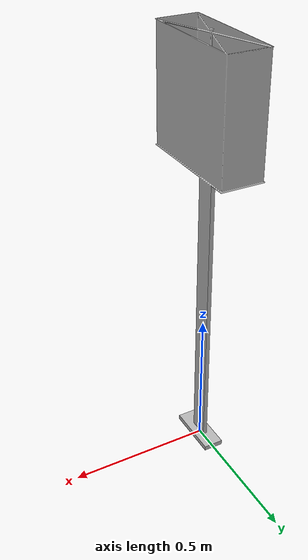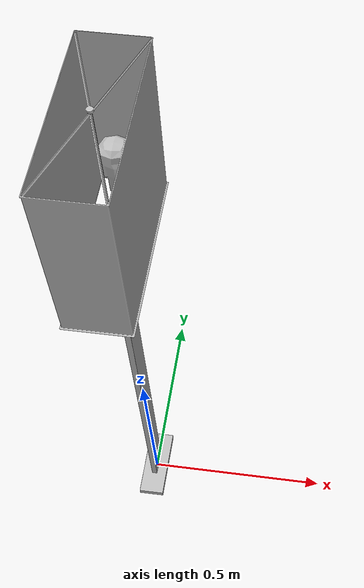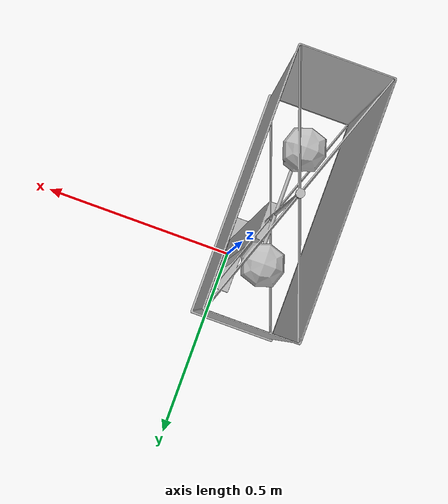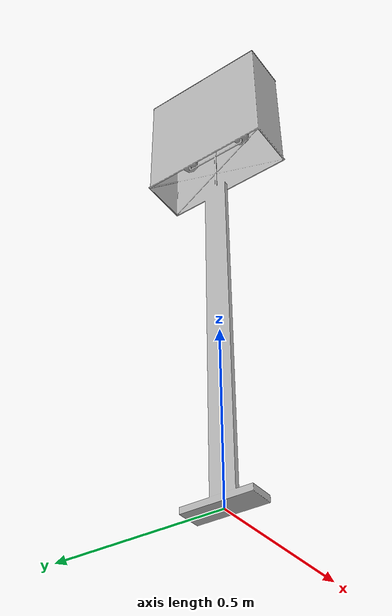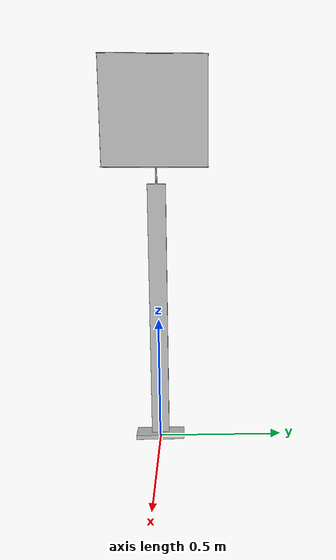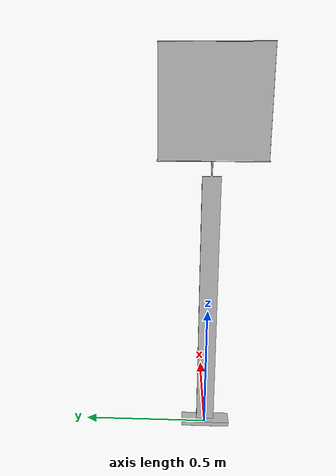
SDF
<?xml version='1.0'?>
<sdf version='1.4'>
  <model name='524'>
    <pose>0 0 0 0 0 0</pose>
    <static>true</static>
    <link name='link'>
      <collision name='collision'>
        <pose>0 0 0 0 0 0</pose>
        <geometry>
          <box>
            <size>0.149959 0.399932 2</size>
          </box>
        </geometry>
      </collision>
      <visual name='visual'>
        <pose>0 0 0 0 0 0</pose>
        <geometry>
          <mesh><uri>model://524/524.dae</uri></mesh>
        </geometry>
      </visual>
    </link>
  </model>
</sdf>
